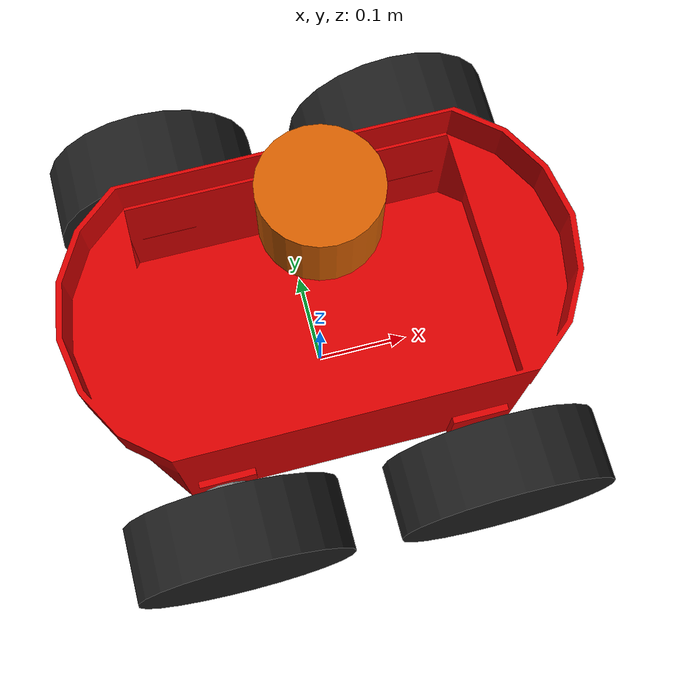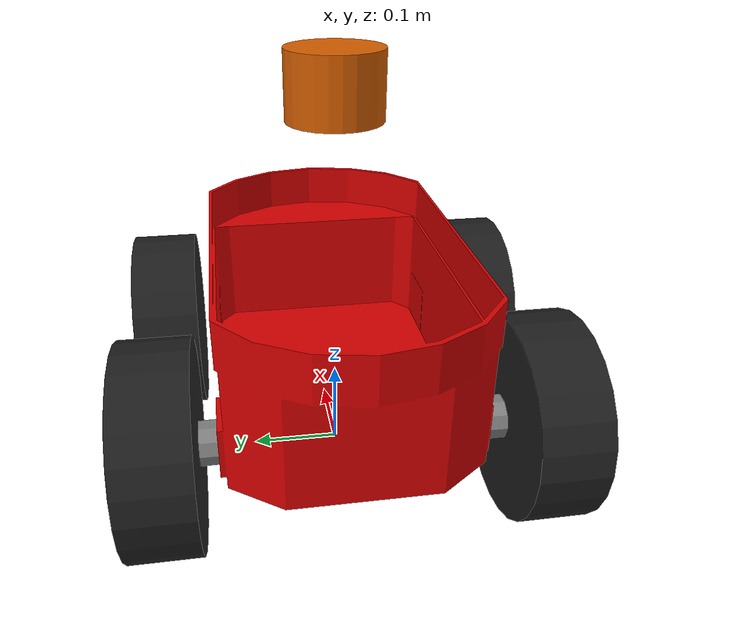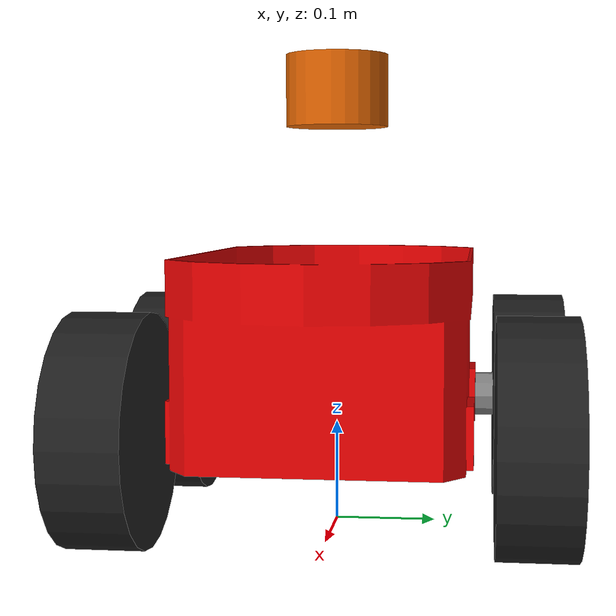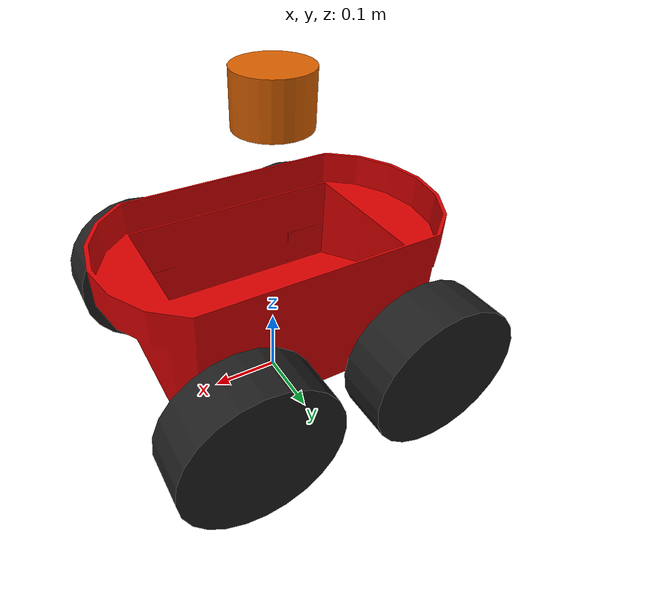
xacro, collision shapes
<?xml version="1.0"?>

<robot xmlns:sensor="http://playerstage.sourceforge.net/gazebo/xmlschema/#sensor"
       xmlns:controller="http://playerstage.sourceforge.net/gazebo/xmlschema/#controller"
       xmlns:interface="http://playerstage.sourceforge.net/gazebo/xmlschema/#interface"
       xmlns:xacro="http://ros.org/wiki/xacro"
name="pioneer3at">

<include filename="$(find p2os_urdf)/defs/pioneer3at_body.xacro"/>

<xacro:include filename="$(find velodyne_description)/urdf/VLP-16.urdf.xacro"/>
  <VLP-16 parent="base_link" name="velodyne" topic="/velodyne_points">
    <origin xyz="0 0 0.4" rpy="0 0 0" />
  </VLP-16>

<xacro:p3at_front suffix="left" reflect="1"/>
<xacro:p3at_front suffix="right" reflect="-1"/>
<xacro:p3at_back suffix="left" reflect="1"/>
<xacro:p3at_back suffix="right" reflect="-1"/>
<xacro:p3at_gazebo_ext/>

</robot>

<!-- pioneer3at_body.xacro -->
<robot xmlns:sensor="http://playerstage.sourceforge.net/gazebo/xmlschema/#sensor"
       xmlns:controller="http://playerstage.sourceforge.net/gazebo/xmlschema/#controller"
       xmlns:interface="http://playerstage.sourceforge.net/gazebo/xmlschema/#interface"
       xmlns:xacro="http://ros.org/wiki/xacro"
>

<!-- Chassis -->
	<link name="base_link">
		<inertial>
			<mass value="10.0"/>
			<origin xyz="0 0 0.177"/>
			<inertia ixx="0.3338" ixy="0.0" ixz="0.0"
				 iyy="0.4783" iyz="0.0"
				 izz="0.3338"/>
		</inertial>
		<visual name="base_visual">
			<origin xyz="0 0 0.177" rpy="0 0 0"/>
			<geometry name="pioneer_geom">
				<mesh filename="package://p2os_urdf/meshes/p3at_meshes/chassis.stl"/>
			</geometry>
			<material name="ChassisRed">
				<color rgba="0.851 0.0 0.0 1.0"/>
			</material>
		</visual>
		<collision>
			<origin xyz="0 0 0.177" rpy="0 0 0"/>
				<geometry>
					<mesh filename="package://p2os_urdf/meshes/p3at_meshes/chassis.stl"/>
				</geometry>
		</collision>
	</link>
	<gazebo reference="base_link">
		<material value="Gazebo/Red"/>
	</gazebo>

<!-- Add base footprint -->
  <link name="base_footprint">
  </link>

  <joint name="base_to_footprint" type="fixed">
    <parent link="base_link"/>
    <child link="base_footprint"/>
    <origin xyz="0 0 0"/>
  </joint>

<!-- Top -->
	<link name="top_plate">
		<inertial>
			<mass value="0.1"/>
			<origin xyz="-0.025 0 -0.223"/>
			<inertia ixx="1.0" ixy="0.0" ixz="0.0"
				 iyy="1.0" iyz="0.0"
 				izz="1.0"/>
		</inertial>
		<visual name="base_visual">
			<origin xyz="0 0 0" rpy="0 0 0"/>
			<geometry name="pioneer_geom">
				<mesh filename="package://p2os_urdf/meshes/p3at_meshes/top.stl"/>
			</geometry>
			<material name="TopBlack">
					<color rgba="0.038 0.038 0.038 1.0"/>
			</material>
		</visual>
		<collision>
			<origin xyz="0 0 0" rpy="0 0 0"/>
			<geometry>
				<box size="0 0 0"/>
			</geometry>
		</collision>
	</link>
	<gazebo reference="top_plate">
		<material value="Gazebo/Black"/>
	</gazebo>

	<joint name="base_top_joint" type="fixed">
		<origin xyz="0.003 0 0.274" rpy="0 0 0"/>
		<parent link="base_link"/>
		<child link="top_plate"/>
	</joint>
<!-- Front + Back Sonar -->
	<link name="front_sonar">
		<inertial>
			<mass value="0.1"/>
			<origin xyz="0 0 0"/>
			<inertia ixx="1.0" ixy="0.0" ixz="0.0"
				 iyy="1.0" iyz="0.0" izz="1.0"/>
		</inertial>
		<visual name="base_visual">
			<origin xyz="0 0 0" rpy="0 0 0"/>
			<geometry name="pioneer_geom">
				<mesh filename="package://p2os_urdf/meshes/p3at_meshes/front_sonar.stl"/>
			</geometry>
			<material name="SonarYellow">
				<color rgba="0.715 0.583 0.210 1.0"/>
			</material>
		</visual>
		<collision>
			<origin xyz="0 0 0" rpy="0 0 0"/>
			<geometry>
				<box size="0 0 0"/>
			</geometry>
		</collision>
	</link>
	<gazebo reference="front_sonar">
		<material value="Gazebo/Yellow"/>
	</gazebo>

	<joint name="base_front_joint" type="fixed">
		<origin xyz="0.193 0 0.25" rpy="0 0 0"/>
		<parent link="base_link"/>
		<child link="front_sonar"/>
	</joint>

	<link name="back_sonar">
		<inertial>
			<mass value="0.1"/>
			<origin xyz="0 0 0"/>
			<inertia ixx="1.0" ixy="0.0" ixz="0.0"
				 iyy="1.0" iyz="0.0" izz="1.0"/>
		</inertial>
		<visual name="base_visual">
			<origin xyz="0 0 0" rpy="0 0 0"/>
			<geometry name="pioneer_geom">
				<mesh filename="package://p2os_urdf/meshes/p3at_meshes/back_sonar.stl"/>
			</geometry>
			<material name="SonarYellow">
				<color rgba="0.715 0.583 0.210 1.0"/>
			</material>
		</visual>
		<collision>
			<origin xyz="0 0 0" rpy="0 0 0"/>
			<geometry>
				<box size="0 0 0"/>
			</geometry>
		</collision>
	</link>
	<gazebo reference="back_sonar">
		<material value="Gazebo/Yellow"/>
	</gazebo>

	<joint name="base_back_joint" type="fixed">
		<origin xyz="-0.187 0 0.247" rpy="0 0 0"/>
		<parent link="base_link"/>
		<child link="back_sonar"/>
	</joint>

<!-- Front Axles + Wheels + Hubcaps -->
<xacro:macro name="p3at_front" params="suffix reflect">
	<link name="p3at_front_${suffix}_axle">
		<inertial>
			<mass value="0.1"/>
			<origin xyz="0 0 0"/>
			<inertia ixx="1.0" ixy="0.0" ixz="0.0"
				 iyy="1.0" iyz="0.0" izz="1.0"/>
  	 	</inertial>
	<visual name="base_visual">
		<origin xyz="0 0 0" rpy="0 0 0"/>
		<geometry name="pioneer_geom">
			<mesh filename="package://p2os_urdf/meshes/p3at_meshes/axle.stl"/>
		</geometry>
		<material name="AxleGrey">
			<color rgba="0.5 0.5 0.5 1"/>
		</material>
	</visual>
	<collision>
		<origin xyz="0 0 0" rpy="0 0 0"/>
		<geometry>
			<box size="0 0 0"/>
		</geometry>
	</collision>
	</link>
	<gazebo reference="p3at_front_${suffix}_axle">
		<material value="Gazebo/Grey"/>
	</gazebo>

	<joint name="base_front_${suffix}_axle_joint" type="fixed">
		<origin xyz="0.135 ${reflect*0.156} 0.111" rpy="0 0 0"/>
		<parent link="base_link"/>
		<child link="p3at_front_${suffix}_axle"/>
	</joint>

	<link name="p3at_front_${suffix}_hub">
		<inertial>
			<mass value="0.1"/>
			<origin xyz="0 0 0"/>
			<inertia ixx="1.0" ixy="0.0" ixz="0.0"
				 iyy="1.0" iyz="0.0" izz="1.0"/>
  	 	</inertial>
	<visual name="base_visual">
		<origin xyz="0 0 0" rpy="0 0 0"/>
		<geometry name="pioneer_geom">
			<mesh filename="package://p2os_urdf/meshes/p3at_meshes/${suffix}_hubcap.stl"/>
		</geometry>
		<material name="HubcapYellow">
			<color rgba="1.0 0.811 0.151 1.0"/>
		</material>
	</visual>
	<collision>
		<origin xyz="0 0 0" rpy="0 0 0"/>
		<geometry>
			<box size="0 0 0"/>
		</geometry>
	</collision>
	</link>
	<gazebo reference="p3at_front_${suffix}_hub">
		<material value="Gazebo/Yellow"/>
	</gazebo>

	<joint name="base_front_${suffix}_hub_joint" type="fixed">
		<origin xyz="0 ${reflect*0.041} 0" rpy="0 0 0"/>
		<parent link="p3at_front_${suffix}_axle"/>
		<child link="p3at_front_${suffix}_hub"/>
	</joint>

	<link name="p3at_front_${suffix}_wheel">
		<inertial>
			<mass value="0.5"/>
			<origin xyz="0 0 0"/>
			<inertia ixx="0.012411765597" ixy="0" ixz="0"
         iyy="0.015218160428" iyz="0" izz="0.011763977943"/>
      </inertial>
	<visual name="base_visual">
		<origin xyz="0 0 0" rpy="0 0 0"/>
		<geometry name="pioneer_geom">
			<mesh filename="package://p2os_urdf/meshes/p3at_meshes/wheel.stl"/>
		</geometry>
		<material name="WheelBlack">
			<color rgba="0.117 0.117 0.117 1"/>
		</material>
	</visual>
	<collision>
		<origin xyz="0 0 0" rpy="${-3.1415927/2} 0 0"/>
		<geometry>
	    <!--mesh filename="package://p2os_urdf/meshes/p3at_meshes/wheel.stl"/-->
	    <cylinder radius="0.111" length="0.075"/>
		</geometry>
	</collision>
	</link>
	<gazebo reference="p3at_front_${suffix}_wheel">
		<material value="Gazebo/Black"/>
	</gazebo>

	<joint name="p3at_front_${suffix}_wheel_joint" type="continuous">
  	<axis xyz="0 1 0"/>
    <anchor xyz="0 0 0"/>
    <limit effort="100" velocity="100" />
    <joint_properties damping="0.7"/>
		<origin xyz="0 0 0" rpy="0 0 0"/>
		<parent link="p3at_front_${suffix}_hub"/>
		<child link="p3at_front_${suffix}_wheel"/>
	</joint>
</xacro:macro>
<!-- Back Axles + Wheels + Hubcaps -->
<xacro:macro name="p3at_back" params="suffix reflect">
	<link name="p3at_back_${suffix}_axle">
		<inertial>
			<mass value="0.1"/>
			<origin xyz="0 0 0"/>
			<inertia ixx="1.0" ixy="0.0" ixz="0.0"
				 iyy="1.0" iyz="0.0" izz="1.0"/>
  	 	</inertial>
	<visual name="base_visual">
		<origin xyz="0 0 0" rpy="0 0 0"/>
		<geometry name="pioneer_geom">
			<mesh filename="package://p2os_urdf/meshes/p3at_meshes/axle.stl"/>
		</geometry>
		<material name="AxleGrey">
			<color rgba="0.5 0.5 0.5 1"/>
		</material>
	</visual>
	<collision>
		<origin xyz="0 0 0" rpy="0 0 0"/>
		<geometry>
			<mesh filename="package://p2os_urdf/meshes/p3at_meshes/axle.stl"/>
		</geometry>
	</collision>
	</link>
	<gazebo reference="p3at_back_${suffix}_axle">
		<material value="Gazebo/Grey"/>
	</gazebo>

	<joint name="bp3at_back_${suffix}_axle_joint" type="fixed">
		<origin xyz="-0.134 ${reflect*0.156} 0.111" rpy="0 0 0"/>
		<parent link="base_link"/>
		<child link="p3at_back_${suffix}_axle"/>
	</joint>

	<link name="p3at_back_${suffix}_hub">
		<inertial>
			<mass value="0.1"/>
			<origin xyz="0 0 0"/>
			<inertia ixx="1.0" ixy="0.0" ixz="0.0"
				 iyy="1.0" iyz="0.0" izz="1.0"/>
  	 	</inertial>
	<visual name="base_visual">
		<origin xyz="0 0 0" rpy="0 0 0"/>
		<geometry name="pioneer_geom">
			<mesh filename="package://p2os_urdf/meshes/p3at_meshes/${suffix}_hubcap.stl"/>
		</geometry>
		<material name="HubcapYellow"/>
	</visual>
	<collision>
		<origin xyz="0 0 0" rpy="0 0 0"/>
		<geometry>
			<mesh filename="package://p2os_urdf/meshes/p3at_meshes/${suffix}_hubcap.stl"/>
		</geometry>
	</collision>
	</link>
	<gazebo reference="p3at_back_${suffix}_hub">
		<material value="Gazebo/Yellow"/>
	</gazebo>

	<joint name="p3at_back_${suffix}_hub_joint" type="fixed">
		<origin xyz="-0 ${reflect*0.041} 0" rpy="0 0 0"/>
		<parent link="p3at_back_${suffix}_axle"/>
		<child link="p3at_back_${suffix}_hub"/>
	</joint>

	<link name="p3at_back_${suffix}_wheel">
		<inertial>
			<mass value="0.5"/>
			<origin xyz="0 0 0"/>
			<inertia ixx="0.012411765597" ixy="0" ixz="0"
         iyy="0.015218160428" iyz="0" izz="0.011763977943"/>
      </inertial>
	<visual name="base_visual">
		<origin xyz="0 0 0" rpy="0 0 0"/>
		<geometry name="pioneer_geom">
			<mesh filename="package://p2os_urdf/meshes/p3at_meshes/wheel.stl"/>
		</geometry>
		<material name="WheelBlack"/>
	</visual>
	<collision>
		<origin xyz="0 0 0" rpy="${-3.1415927/2} 0 0"/>
		<geometry>
	    <!--mesh filename="package://p2os_urdf/meshes/p3at_meshes/wheel.stl"/-->
	    <cylinder radius="0.111" length="0.075"/>
		</geometry>
	</collision>
	</link>
	<gazebo reference="p3at_back_${suffix}_wheel">
		<material value="Gazebo/Black"/>
	</gazebo>

	<joint name="p3at_back_${suffix}_wheel_joint" type="continuous">
	  <axis xyz="0 1 0"/>
    <anchor xyz="0 0 0"/>
    <limit effort="100" velocity="100" />
    <joint_properties damping="0.7"/>
		<origin xyz="0 0 0" rpy="0 0 0"/>
		<parent link="p3at_back_${suffix}_hub"/>
		<child link="p3at_back_${suffix}_wheel"/>
	</joint>

  <gazebo reference="p3at_back_${suffix}_wheel">
    <kp>1000000.0</kp> <!-- kp and kd for rubber -->
    <kd>100.0</kd>
    <mu1>10.0</mu1>
    <mu2>1.0</mu2>
    <fdir1>0 1 0</fdir1> <!-- is this correct? -->
    <maxVel>1.0</maxVel>
    <minDepth>0.00</minDepth>
  </gazebo>

  <gazebo reference="p3at_front_${suffix}_wheel">
    <kp>1000000.0</kp> <!-- kp and kd for rubber -->
    <kd>100.0</kd>
    <mu1>10.0</mu1>
    <mu2>1.0</mu2>
    <fdir1>0 1 0</fdir1> <!-- is this correct? -->
    <maxVel>1.0</maxVel>
    <minDepth>0.00</minDepth>
  </gazebo>

</xacro:macro>

<xacro:macro name="p3at_gazebo_ext">

<gazebo>
  <plugin name="skid_steer_drive_controller" filename="libgazebo_ros_skid_steer_drive.so">
    <updateRate>100.0</updateRate>
    <robotNamespace>/</robotNamespace>
    <leftFrontJoint>p3at_front_left_wheel_joint</leftFrontJoint>
    <rightFrontJoint>p3at_front_right_wheel_joint</rightFrontJoint>
    <leftRearJoint>p3at_back_left_wheel_joint</leftRearJoint>
    <rightRearJoint>p3at_back_right_wheel_joint</rightRearJoint>
    <wheelSeparation>0.4</wheelSeparation>
    <wheelDiameter>0.215</wheelDiameter>
    <robotBaseFrame>base_link</robotBaseFrame>
    <torque>200</torque>
    <topicName>cmd_vel</topicName>
	<odometryTopic>odom</odometryTopic>
	<odometryFrame>odom</odometryFrame>
  </plugin>
</gazebo>

<gazebo>
	<plugin name="imu_controller" filename="libhector_gazebo_ros_imu.so">
		<robotNamespace>/</robotNamespace>
		<updateRate>50.0</updateRate>
		<bodyName>base_link</bodyName>
		<topicName>imu_data</topicName>
		<accelDrift>0.02 0.02 0.02</accelDrift>
		<accelGaussianNoise>0.02 0.02 0.02</accelGaussianNoise>
		<rateDrift>0.02 0.02 0.02</rateDrift>
		<rateGaussianNoise>0.02 0.02 0.02 </rateGaussianNoise>
		<headingDrift>0.02</headingDrift>
		<headingGaussianNoise>0.02</headingGaussianNoise>
	</plugin>
</gazebo>

<gazebo reference="base_link">
      <sensor type="wireless_receiver" name="wireless">
        <always_on>1</always_on>
        <visualize>1</visualize>
        <update_rate>100.0</update_rate>
         <transceiver>
           <min_frequency>2412.0</min_frequency>
           <max_frequency>2484.0</max_frequency>
           <power>1.5</power>
           <gain>1.5</gain>
           <sensitivity>-90.0</sensitivity>`
        </transceiver>

        <plugin name="gazebo_ros_wireless_controller" filename="libhector_gazebo_ros_wireless_receiver.so">
          <topicName>wireless</topicName>
          <frameId>wireless_link</frameId>
          <rssDrift>0</rssDrift>
          <rssGaussianNoise>0.0</rssGaussianNoise>
          <AoADrift>0 0 0</AoADrift>
          <AoAGaussianNoise>0.00 0.00 0.00</AoAGaussianNoise>
        </plugin>
      </sensor>
</gazebo>

</xacro:macro>

</robot>

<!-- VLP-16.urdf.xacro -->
<robot xmlns:xacro="http://www.ros.org/wiki/xacro" name="VLP-16">
  <xacro:property name="M_PI" value="3.1415926535897931" />
  <xacro:macro name="VLP-16" params="*origin is_sim:=true parent:=base_link name:=velodyne tf_prefix:='' topic:=/velodyne_points organize_cloud:=false hz:=10 lasers:=16 samples:=1875 collision_range:=0.3 min_range:=0.0 max_range:=100.0 noise:=0.008 min_angle:=-${M_PI} max_angle:=${M_PI} gpu:=false">

    <joint name="${name}_base_mount_joint" type="fixed">
      <xacro:insert_block name="origin" />
      <parent link="${parent}"/>
      <child link="${name}_base_link"/>
    </joint>

    <link name="${name}_base_link">
      <inertial>
        <mass value="0.83"/>
        <origin xyz="0 0 0.03585"/>
        <inertia ixx="${(0.83 * (3.0*0.0516*0.0516 + 0.0717*0.0717)) / 12.0}" ixy="0" ixz="0"
          iyy="${(0.83 * (3.0*0.0516*0.0516 + 0.0717*0.0717)) / 12.0}" iyz="0"
          izz="${0.5 * 0.83 * (0.0516*0.0516)}"/>
      </inertial>
      <visual>
        <geometry>
          <mesh filename="package://velodyne_description/meshes/VLP16_base_1.dae" />
        </geometry>
      </visual>
      <visual>
        <geometry>
          <mesh filename="package://velodyne_description/meshes/VLP16_base_2.dae" />
        </geometry>
      </visual>
      <collision>
        <origin rpy="0 0 0" xyz="0 0 0.03585"/>
        <geometry>
          <cylinder radius="0.0516" length="0.0717"/>
        </geometry>
      </collision>
    </link>

    <joint name="${name}_base_scan_joint" type="fixed" >
      <origin xyz="0 0 0.0377" rpy="0 0 0" />
      <parent link="${name}_base_link" />
      <child link="${name}"/>
    </joint>

    <link name="${name}">
      <inertial>
        <mass value="0.01"/>
        <origin xyz="0 0 0"/>
        <inertia ixx="1e-7" ixy="0" ixz="0" iyy="1e-7" iyz="0" izz="1e-7"/>
      </inertial>
      <visual>
        <origin xyz="0 0 -0.0377" />
        <geometry>
          <mesh filename="package://velodyne_description/meshes/VLP16_scan.dae" />
        </geometry>
      </visual>
      <collision>
        <geometry>
          <sphere radius="0"/>
        </geometry>
      </collision>
    </link>

    <!-- Gazebo requires the velodyne_gazebo_plugins package -->
    <xacro:if value="${is_sim}">
        <gazebo reference="${name}">
            <xacro:if value="${gpu}">
                <sensor type="gpu_ray" name="${name}-VLP16">
                <pose>0 0 0 0 0 0</pose>
                <visualize>false</visualize>
                <update_rate>${hz}</update_rate>
                <ray>
                    <scan>
                    <horizontal>
                        <samples>${samples}</samples>
                        <resolution>1</resolution>
                        <min_angle>${min_angle}</min_angle>
                        <max_angle>${max_angle}</max_angle>
                    </horizontal>
                    <vertical>
                        <samples>${lasers}</samples>
                        <resolution>1</resolution>
                        <min_angle>-${15.0*M_PI/180.0}</min_angle>
                        <max_angle> ${15.0*M_PI/180.0}</max_angle>
                    </vertical>
                    </scan>
                    <range>
                    <min>${collision_range}</min>
                    <max>${max_range+1}</max>
                    <resolution>0.001</resolution>
                    </range>
                    <noise>
                    <type>gaussian</type>
                    <mean>0.0</mean>
                    <stddev>0.0</stddev>
                    </noise>
                </ray>
                <plugin name="gazebo_ros_laser_controller" filename="libgazebo_ros_velodyne_laser.so">
                    <ros>
                    <namespace>/${name}</namespace>
                    <remapping>~/out:=${topic}</remapping>
                    </ros>
                    <tf_prefix>${tf_prefix}</tf_prefix>
                    <frame_name>${name}</frame_name>
                    <organize_cloud>${organize_cloud}</organize_cloud>
                    <min_range>${min_range}</min_range>
                    <max_range>${max_range}</max_range>
                    <gaussian_noise>${noise}</gaussian_noise>
                </plugin>
                </sensor>
            </xacro:if>
            <xacro:unless value="${gpu}">
                <sensor type="ray" name="${name}-VLP16">
                <pose>0 0 0 0 0 0</pose>
                <visualize>false</visualize>
                <update_rate>${hz}</update_rate>
                <ray>
                    <scan>
                    <horizontal>
                        <samples>${samples}</samples>
                        <resolution>1</resolution>
                        <min_angle>${min_angle}</min_angle>
                        <max_angle>${max_angle}</max_angle>
                    </horizontal>
                    <vertical>
                        <samples>${lasers}</samples>
                        <resolution>1</resolution>
                        <min_angle>-${15.0*M_PI/180.0}</min_angle>
                        <max_angle> ${15.0*M_PI/180.0}</max_angle>
                    </vertical>
                    </scan>
                    <range>
                    <min>${collision_range}</min>
                    <max>${max_range+1}</max>
                    <resolution>0.001</resolution>
                    </range>
                    <noise>
                    <type>gaussian</type>
                    <mean>0.0</mean>
                    <stddev>0.0</stddev>
                    </noise>
                </ray>
                <plugin name="gazebo_ros_laser_controller" filename="libgazebo_ros_velodyne_laser.so">
                    <ros>
                    <namespace>/${name}</namespace>
                    <remapping>~/out:=${topic}</remapping>
                    </ros>
                    <tf_prefix>${tf_prefix}</tf_prefix>
                    <frame_name>${name}</frame_name>
                    <organize_cloud>${organize_cloud}</organize_cloud>
                    <min_range>${min_range}</min_range>
                    <max_range>${max_range}</max_range>
                    <gaussian_noise>${noise}</gaussian_noise>
                </plugin>
                </sensor>
            </xacro:unless>
        </gazebo>
    </xacro:if>

  </xacro:macro>
</robot>
